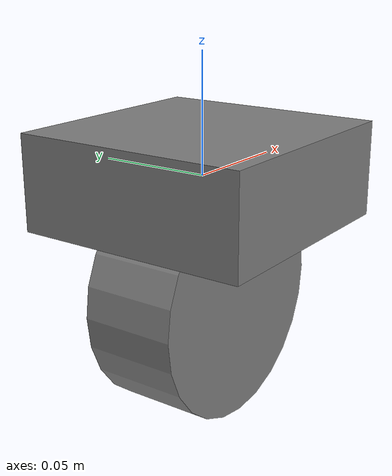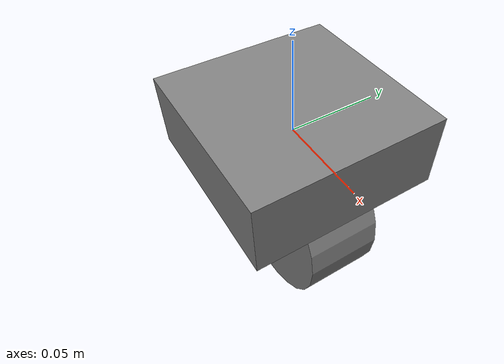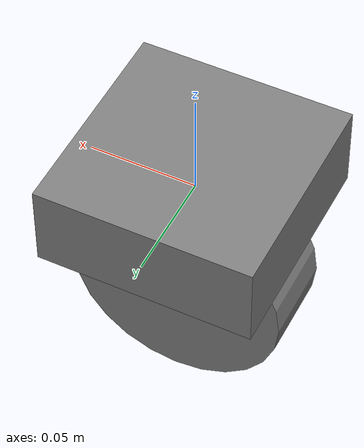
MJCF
<!-- One motor-driven wheel on a motor-driven pivot, as on a KELO drive: the wheel takes velocity
     and torque modes, the pivot is left out of them. -->
<mujoco model="motor_wheel">
  <option timestep="0.002" gravity="0 0 0"/>
  <worldbody>
    <body name="drive">
      <joint name="pivot" type="hinge" axis="0 0 1" damping="0.1"/>
      <geom type="box" size="0.05 0.05 0.02" mass="1"/>
      <body name="wheel" pos="0 0 -0.05">
        <joint name="wheel" type="hinge" axis="0 1 0" damping="0.01" armature="0.002"/>
        <geom type="cylinder" size="0.05 0.02" quat="0.7071068 0.7071068 0 0" mass="0.3"/>
      </body>
    </body>
  </worldbody>
  <actuator>
    <motor name="pivot" joint="pivot" gear="4" ctrlrange="-10 10"/>
    <motor name="wheel" joint="wheel" gear="1" ctrlrange="-12 12"/>
  </actuator>
</mujoco>
